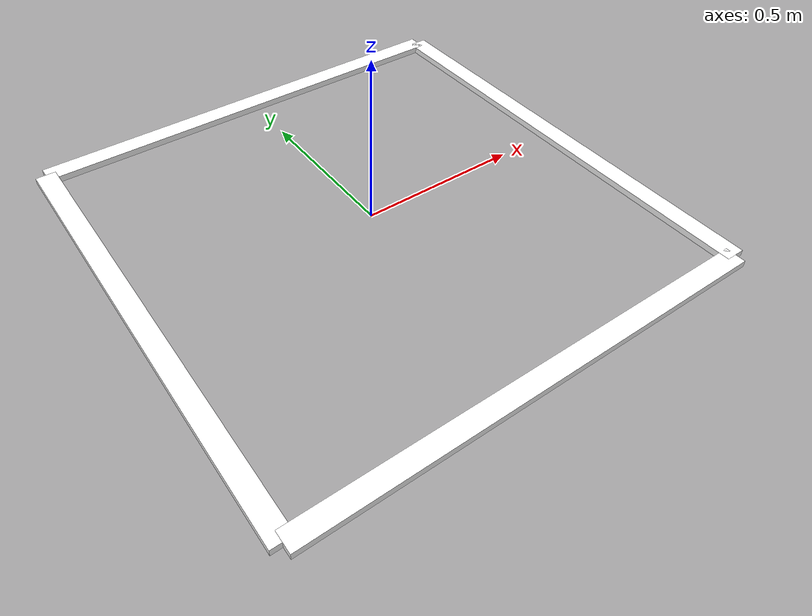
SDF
<?xml version="1.0"?>
<sdf version="1.8">
  <model name="starting_zone">
    <static>true</static>

    <link name="frame">
      <visual name="north_edge">
        <pose>0 0.7 0 0 0 0</pose>
        <geometry>
          <box>
            <size>1.4 0.06 0.02</size>
          </box>
        </geometry>
        <material>
          <ambient>1 1 1 1</ambient>
          <diffuse>1 1 1 1</diffuse>
        </material>
      </visual>
      <visual name="south_edge">
        <pose>0 -0.7 0 0 0 0</pose>
        <geometry>
          <box>
            <size>1.4 0.06 0.02</size>
          </box>
        </geometry>
        <material>
          <ambient>1 1 1 1</ambient>
          <diffuse>1 1 1 1</diffuse>
        </material>
      </visual>
      <visual name="east_edge">
        <pose>0.7 0 0 0 0 0</pose>
        <geometry>
          <box>
            <size>0.06 1.4 0.02</size>
          </box>
        </geometry>
        <material>
          <ambient>1 1 1 1</ambient>
          <diffuse>1 1 1 1</diffuse>
        </material>
      </visual>
      <visual name="west_edge">
        <pose>-0.7 0 0 0 0 0</pose>
        <geometry>
          <box>
            <size>0.06 1.4 0.02</size>
          </box>
        </geometry>
        <material>
          <ambient>1 1 1 1</ambient>
          <diffuse>1 1 1 1</diffuse>
        </material>
      </visual>
    </link>
  </model>
</sdf>
